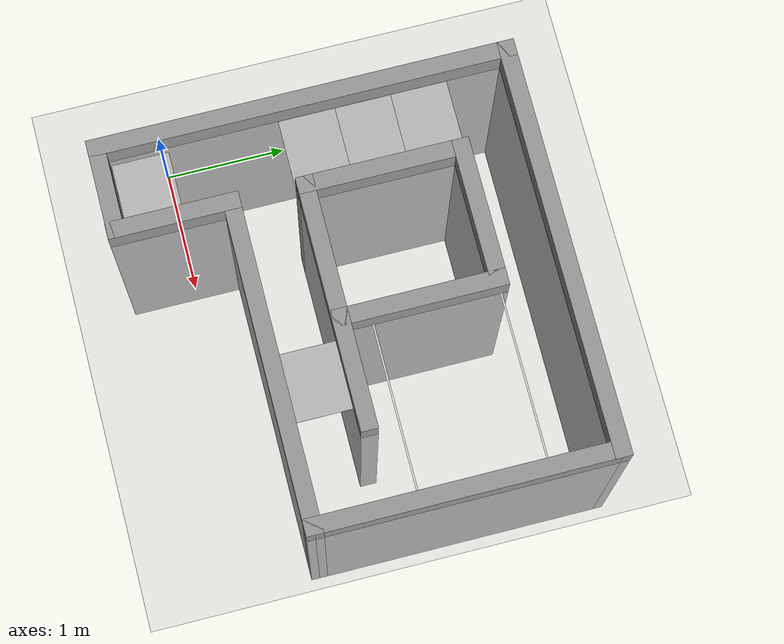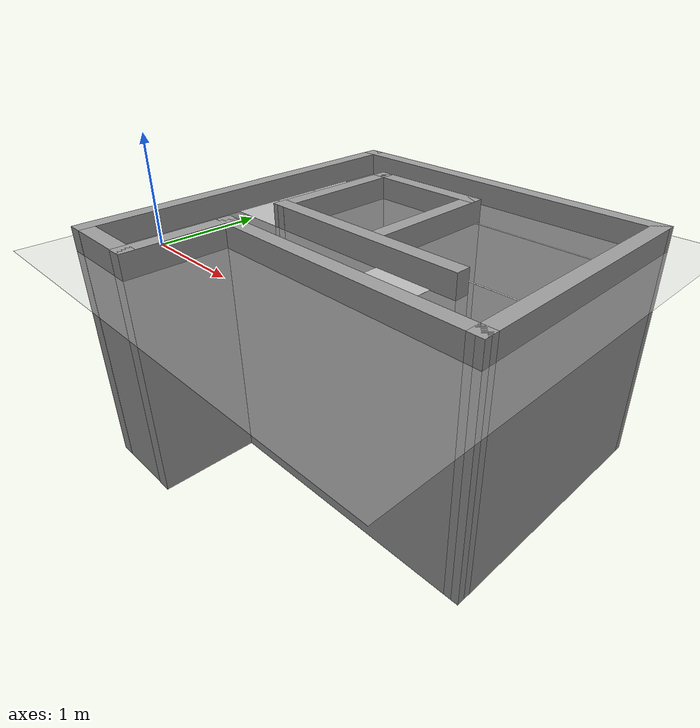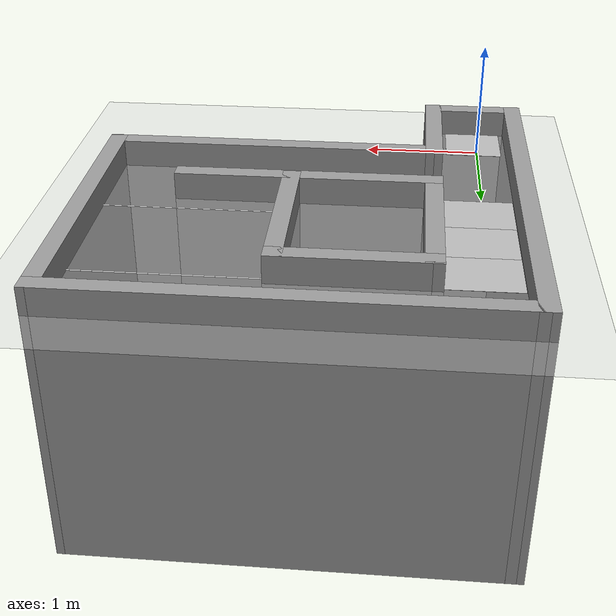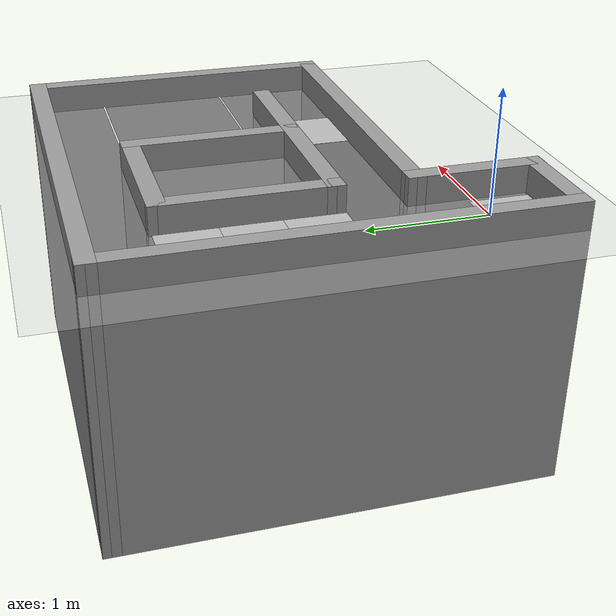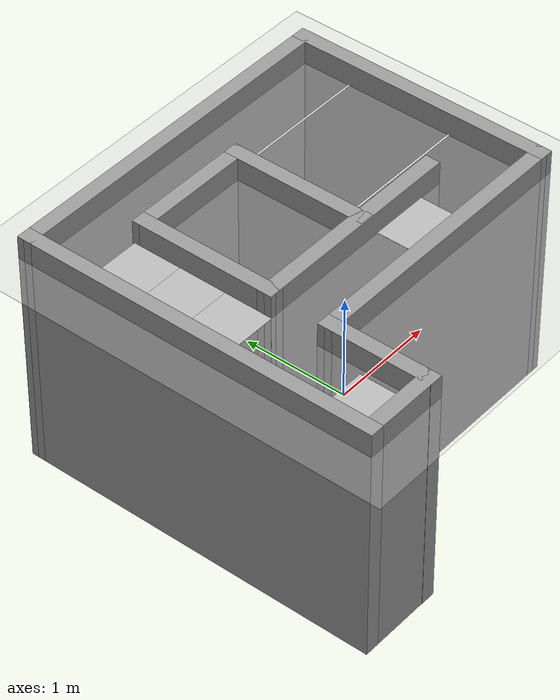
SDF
<sdf version="1.7">
 <world name="default">
  <light name="sun" type="directional">
   <pose>0 0 10 0 -0 0</pose>
   <diffuse>0.8 0.8 0.8 1</diffuse>
   <specular>0.2 0.2 0.2 1</specular>
   <attenuation>
    <range>1000</range>
    <constant>0.9</constant>
    <linear>0.01</linear>
    <quadratic>0.001</quadratic>
   </attenuation>
   <direction>-0.5 0.1 -0.9</direction>
   <spot><inner_angle>0</inner_angle><outer_angle>0</outer_angle><falloff>0</falloff></spot>
  </light>
  <model name="ground_plane">
   <static>1</static>
   <link name="link">
    <collision name="collision">
     <geometry><plane><normal>0 0 1</normal><size>100 100</size></plane></geometry>
     <surface><friction><ode><mu>100</mu><mu2>50</mu2></ode></friction></surface>
    </collision>
    <visual name="visual">
     <cast_shadows>0</cast_shadows>
     <geometry><plane><normal>0 0 1</normal><size>100 100</size></plane></geometry>
     <material>
      <script><uri>file://media/materials/scripts/gazebo.material</uri><name>Gazebo/Grey</name></script>
     </material>
    </visual>
   </link>
  </model>
  <gravity>0 0 -9.8</gravity>
  <magnetic_field>6e-06 2.3e-05 -4.2e-05</magnetic_field>
  <atmosphere type="adiabatic"/>
  <physics type="ode">
   <max_step_size>0.001</max_step_size>
   <real_time_factor>1</real_time_factor>
   <real_time_update_rate>1000</real_time_update_rate>
  </physics>
  <scene><ambient>0.4 0.4 0.4 1</ambient><background>0.7 0.7 0.7 1</background><shadows>1</shadows></scene>
  <spherical_coordinates>
   <surface_model>EARTH_WGS84</surface_model>
   <latitude_deg>0</latitude_deg>
   <longitude_deg>0</longitude_deg>
   <elevation>0</elevation>
   <heading_deg>0</heading_deg>
  </spherical_coordinates>
  <model name="19th_start">
   <static>1</static>
   <link name="link">
    <collision name="collision">
     <geometry><box><size>0.5 0.5 0.001</size><normal>0 0 1</normal></box></geometry>
     <surface><friction><ode><mu>100</mu><mu2>50</mu2></ode></friction></surface>
    </collision>
    <visual name="visual">
     <cast_shadows>0</cast_shadows>
     <geometry><box><size>0.5 0.5 0.001</size><normal>0 0 1</normal></box></geometry>
     <material>
      <script>
       <uri>model://19th_ros_start/materials/scripts</uri>
       <uri>model://19th_ros_start/materials/textures</uri>
       <name>qr_position2_mat</name>
      </script>
     </material>
    </visual>
   </link>
   <pose>0.026452 -0.198061 0 0 -0 1.5708</pose>
  </model>
  <model name="19th_pickup_point">
   <static>1</static>
   <link name="link">
    <collision name="collision">
     <geometry><box><size>0.6 0.564926 0.001</size><normal>0 0 1</normal></box></geometry>
     <surface><friction><ode><mu>100</mu><mu2>50</mu2></ode></friction></surface>
    </collision>
    <visual name="visual">
     <cast_shadows>0</cast_shadows>
     <geometry><box><size>0.6 0.564926 0.001</size><normal>0 0 1</normal></box></geometry>
     <material>
      <script>
       <uri>model://19th_pickup_point/materials/scripts</uri>
       <uri>model://19th_pickup_point/materials/textures</uri>
       <name>19th_pickup_point</name>
      </script>
     </material>
    </visual>
   </link>
   <pose>2.03487 0.786351 0 0 -0 0</pose>
  </model>
  <model name="white_line">
   <static>1</static>
   <link name="link">
    <collision name="collision">
     <geometry><box><size>1.59356 0.015 0.0001</size><normal>0 0 1</normal></box></geometry>
     <surface><friction><ode><mu>100</mu><mu2>50</mu2></ode></friction></surface>
    </collision>
    <visual name="visual">
     <geometry><box><size>1.59356 0.015 0.0001</size><normal>0 0 1</normal></box></geometry>
     <material>
      <script>
       <uri>model://white_line/materials/scripts</uri>
       <uri>model://white_line/materials/textures</uri>
       <name>white_line</name>
      </script>
     </material>
    </visual>
   </link>
   <pose>2.46625 1.36887 0 0 -0 0</pose>
  </model>
  <model name="white_line_clone">
   <static>1</static>
   <link name="link">
    <collision name="collision">
     <geometry><box><size>1.59356 0.015 0.0001</size><normal>0 0 1</normal></box></geometry>
     <surface><friction><ode><mu>100</mu><mu2>50</mu2></ode></friction></surface>
    </collision>
    <visual name="visual">
     <geometry><box><size>1.59356 0.015 0.0001</size><normal>0 0 1</normal></box></geometry>
     <material>
      <script>
       <uri>model://white_line/materials/scripts</uri>
       <uri>model://white_line/materials/textures</uri>
       <name>white_line</name>
      </script>
     </material>
    </visual>
   </link>
   <pose>2.44796 2.47781 0 0 -0 0</pose>
  </model>
  <model name="19th_A">
   <static>1</static>
   <link name="link">
    <collision name="collision">
     <geometry><box><size>0.6 0.5 0.001</size><normal>0 0 1</normal></box></geometry>
     <surface><friction><ode><mu>100</mu><mu2>50</mu2></ode></friction></surface>
    </collision>
    <visual name="visual">
     <cast_shadows>0</cast_shadows>
     <geometry><box><size>0.6 0.5 0.001</size><normal>0 0 1</normal></box></geometry>
     <material>
      <script>
       <uri>model://19th_A/materials/scripts</uri>
       <uri>model://19th_A/materials/textures</uri>
       <name>position_A</name>
      </script>
     </material>
    </visual>
   </link>
   <pose>0.039808 2.26505 0 0 -0 0</pose>
  </model>
  <model name="19th_B">
   <static>1</static>
   <link name="link">
    <collision name="collision">
     <geometry><box><size>0.6 0.5 0.001</size><normal>0 0 1</normal></box></geometry>
     <surface><friction><ode><mu>100</mu><mu2>50</mu2></ode></friction></surface>
    </collision>
    <visual name="visual">
     <cast_shadows>0</cast_shadows>
     <geometry><box><size>0.6 0.5 0.001</size><normal>0 0 1</normal></box></geometry>
     <material>
      <script>
       <uri>model://19th_B/materials/scripts</uri>
       <uri>model://19th_B/materials/textures</uri>
       <name>position_B</name>
      </script>
     </material>
    </visual>
   </link>
   <pose>0.040568 1.76746 0 0 -0 0</pose>
  </model>
  <model name="19th_C">
   <static>1</static>
   <link name="link">
    <collision name="collision">
     <geometry><box><size>0.6 0.5 0.001</size><normal>0 0 1</normal></box></geometry>
     <surface><friction><ode><mu>100</mu><mu2>50</mu2></ode></friction></surface>
    </collision>
    <visual name="visual">
     <cast_shadows>0</cast_shadows>
     <geometry><box><size>0.6 0.5 0.001</size><normal>0 0 1</normal></box></geometry>
     <material>
      <script>
       <uri>model://19th_C/materials/scripts</uri>
       <uri>model://19th_C/materials/textures</uri>
       <name>position_C</name>
      </script>
     </material>
    </visual>
   </link>
   <pose>0.040262 1.2736 0 0 -0 0</pose>
  </model>
  <model name="19th_second_wall_0">
   <pose>1.45069 1.26352 -2.271 0 -0 0</pose>
   <link name="Wall_20">
    <collision name="Wall_20_Collision">
     <geometry><box><size>0.75 0.15 2.5</size></box></geometry>
     <pose>0 0 1.25 0 -0 0</pose>
    </collision>
    <visual name="Wall_20_Visual">
     <pose>0 0 1.25 0 -0 0</pose>
     <geometry><box><size>0.75 0.15 2.5</size></box></geometry>
     <material>
      <script><uri>file://media/materials/scripts/gazebo.material</uri><name>Gazebo/Grey</name></script>
      <ambient>1 1 1 1</ambient>
     </material>
     <meta><layer>0</layer></meta>
    </visual>
    <pose>-1.34688 -1.79788 0 0 -0 0</pose>
   </link>
   <link name="Wall_22">
    <collision name="Wall_22_Collision">
     <geometry><box><size>1.15138 0.15 2.5</size></box></geometry>
     <pose>0 0 1.25 0 -0 0</pose>
    </collision>
    <visual name="Wall_22_Visual">
     <pose>0 0 1.25 0 -0 0</pose>
     <geometry><box><size>1.15138 0.15 2.5</size></box></geometry>
     <material>
      <script><uri>file://media/materials/scripts/gazebo.material</uri><name>Gazebo/Grey</name></script>
      <ambient>1 1 1 1</ambient>
     </material>
     <meta><layer>0</layer></meta>
    </visual>
    <pose>-1.04688 -1.30003 0 0 -0 1.5708</pose>
   </link>
   <link name="Wall_23">
    <collision name="Wall_23_Collision">
     <geometry><box><size>2.98718 0.15 2.5</size></box></geometry>
     <pose>0 0 1.25 0 -0 0</pose>
    </collision>
    <visual name="Wall_23_Visual">
     <pose>0 0 1.25 0 -0 0</pose>
     <geometry><box><size>2.98718 0.15 2.5</size></box></geometry>
     <material>
      <script><uri>file://media/materials/scripts/gazebo.material</uri><name>Gazebo/Grey</name></script>
      <ambient>1 1 1 1</ambient>
     </material>
     <meta><layer>0</layer></meta>
    </visual>
    <pose>0.371705 -0.800768 0 0 -0 -0.001006</pose>
   </link>
   <link name="Wall_24">
    <collision name="Wall_24_Collision">
     <geometry><box><size>2.75 0.15 2.5</size></box></geometry>
     <pose>0 0 1.25 0 -0 0</pose>
    </collision>
    <visual name="Wall_24_Visual">
     <pose>0 0 1.25 0 -0 0</pose>
     <geometry><box><size>2.75 0.15 2.5</size></box></geometry>
     <material>
      <script><uri>file://media/materials/scripts/gazebo.material</uri><name>Gazebo/Grey</name></script>
      <ambient>1 1 1 1</ambient>
     </material>
     <meta><layer>0</layer></meta>
    </visual>
    <pose>1.79029 0.497805 0 0 -0 1.5708</pose>
   </link>
   <link name="Wall_25">
    <collision name="Wall_25_Collision">
     <geometry><box><size>3.7306 0.15 2.5</size></box></geometry>
     <pose>0 0 1.25 0 -0 0</pose>
    </collision>
    <visual name="Wall_25_Visual">
     <pose>0 0 1.25 0 -0 0</pose>
     <geometry><box><size>3.7306 0.15 2.5</size></box></geometry>
     <material>
      <script><uri>file://media/materials/scripts/gazebo.material</uri><name>Gazebo/Grey</name></script>
      <ambient>1 1 1 1</ambient>
     </material>
     <meta><layer>0</layer></meta>
    </visual>
    <pose>-8e-06 1.79923 0 0 -0 3.1408</pose>
   </link>
   <link name="Wall_26">
    <collision name="Wall_26_Collision">
     <geometry><box><size>3.75 0.15 2.5</size></box></geometry>
     <pose>0 0 1.25 0 -0 0</pose>
    </collision>
    <visual name="Wall_26_Visual">
     <pose>0 0 1.25 0 -0 0</pose>
     <geometry><box><size>3.75 0.15 2.5</size></box></geometry>
     <material>
      <script><uri>file://media/materials/scripts/gazebo.material</uri><name>Gazebo/Grey</name></script>
      <ambient>1 1 1 1</ambient>
     </material>
     <meta><layer>0</layer></meta>
    </visual>
    <pose>-1.79031 0.000659 0 0 -0 -1.5708</pose>
   </link>
   <link name="Wall_28">
    <collision name="Wall_28_Collision">
     <geometry><box><size>2.25 0.15 2.5</size></box></geometry>
     <pose>0 0 1.25 0 -0 0</pose>
    </collision>
    <visual name="Wall_28_Visual">
     <pose>0 0 1.25 0 -0 0</pose>
     <geometry><box><size>2.25 0.15 2.5</size></box></geometry>
     <material>
      <script><uri>file://media/materials/scripts/gazebo.material</uri><name>Gazebo/Grey</name></script>
      <ambient>1 1 1 1</ambient>
     </material>
     <meta><layer>0</layer></meta>
    </visual>
    <pose>0.012483 -0.158745 0 0 -0 0</pose>
   </link>
   <link name="Wall_30">
    <collision name="Wall_30_Collision">
     <geometry><box><size>1.5099 0.15 2.5</size></box></geometry>
     <pose>0 0 1.25 0 -0 0</pose>
    </collision>
    <visual name="Wall_30_Visual">
     <pose>0 0 1.25 0 -0 0</pose>
     <geometry><box><size>1.5099 0.15 2.5</size></box></geometry>
     <material>
      <script><uri>file://media/materials/scripts/gazebo.material</uri><name>Gazebo/Grey</name></script>
      <ambient>1 1 1 1</ambient>
     </material>
     <meta><layer>0</layer></meta>
    </visual>
    <pose>-1.03565 0.52116 0 0 -0 1.56805</pose>
   </link>
   <link name="Wall_31">
    <collision name="Wall_31_Collision">
     <geometry><box><size>1.33593 0.15 2.5</size></box></geometry>
     <pose>0 0 1.25 0 -0 0</pose>
    </collision>
    <visual name="Wall_31_Visual">
     <pose>0 0 1.25 0 -0 0</pose>
     <geometry><box><size>1.33593 0.15 2.5</size></box></geometry>
     <material>
      <script><uri>file://media/materials/scripts/gazebo.material</uri><name>Gazebo/Grey</name></script>
      <ambient>1 1 1 1</ambient>
     </material>
     <meta><layer>0</layer></meta>
    </visual>
    <pose>-0.440822 1.20107 0 0 -0 0</pose>
   </link>
   <link name="Wall_32">
    <collision name="Wall_32_Collision">
     <geometry><box><size>1.5 0.15 2.5</size></box></geometry>
     <pose>0 0 1.25 0 -0 0</pose>
    </collision>
    <visual name="Wall_32_Visual">
     <pose>0 0 1.25 0 -0 0</pose>
     <geometry><box><size>1.5 0.15 2.5</size></box></geometry>
     <material>
      <script><uri>file://media/materials/scripts/gazebo.material</uri><name>Gazebo/Grey</name></script>
      <ambient>1 1 1 1</ambient>
     </material>
     <meta><layer>0</layer></meta>
    </visual>
    <pose>0.152144 0.526065 0 0 -0 -1.5708</pose>
   </link>
   <static>1</static>
  </model>
 </world>
</sdf>
